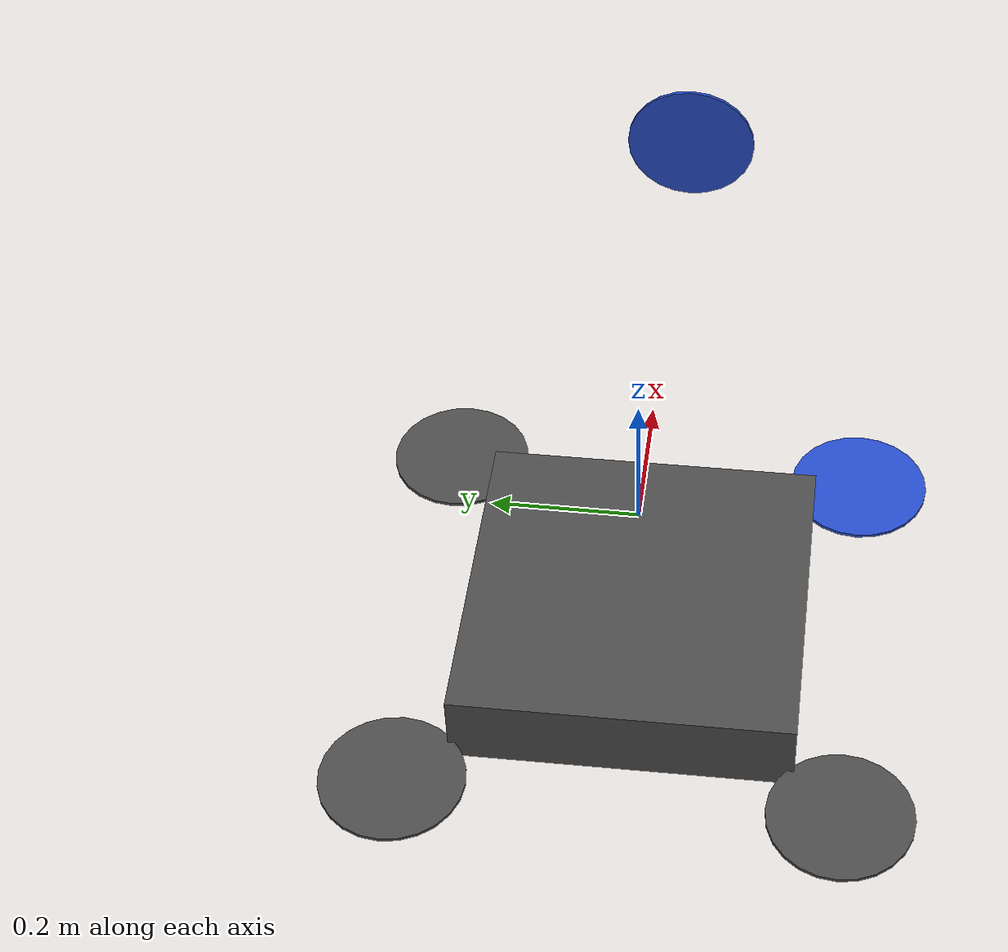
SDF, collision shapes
<sdf version='1.5'>
  <model name='standard_vtol'>
    <link name='base_link'>
      <pose>0 0 0 0 0 0</pose>
      <inertial>
        <pose>0 0 0 0 0 0</pose>
        <mass>1.5</mass>
        <inertia>
          <ixx>0.197563</ixx>
          <ixy>0</ixy>
          <ixz>0</ixz>
          <iyy>0.1458929</iyy>
          <iyz>0</iyz>
          <izz>0.1477</izz>
        </inertia>
      </inertial>
      <collision name='base_link_collision'>
        <pose>0 0 -0.2 0 0 0</pose>
        <geometry>
          <box>
            <size>0.47 0.47 0.11</size>
          </box>
        </geometry>
        <surface>
          <contact>
            <ode/>
          </contact>
          <friction>
            <ode/>
          </friction>
        </surface>
      </collision>
      <visual name='base_link_visual'>
        <pose>0.07 0 -0.08 0 0 0</pose>
        <geometry>
          <mesh>
            <scale>0.1 0.1 0.1</scale>
            <uri>model://standard_vtol/meshes/body.dae</uri>
          </mesh>
        </geometry>
        <material>
          <script>
            <name>Gazebo/DarkGrey</name>
            <uri>__default__</uri>
          </script>
        </material>
      </visual>
      <gravity>1</gravity>
      <velocity_decay/>
      <self_collide>0</self_collide>
    </link>
    <link name='standard_vtol/imu_link'>
      <pose>0 0 0 0 0 0</pose>
      <inertial>
        <pose>0 0 0 0 0 0</pose>
        <mass>0.015</mass>
        <inertia>
          <ixx>1e-05</ixx>
          <ixy>0</ixy>
          <ixz>0</ixz>
          <iyy>1e-05</iyy>
          <iyz>0</iyz>
          <izz>1e-05</izz>
        </inertia>
      </inertial>
    </link>
    <joint name='standard_vtol/imu_joint' type='revolute'>
      <child>standard_vtol/imu_link</child>
      <parent>base_link</parent>
      <axis>
        <xyz>1 0 0</xyz>
        <limit>
          <lower>0</lower>
          <upper>0</upper>
          <effort>0</effort>
          <velocity>0</velocity>
        </limit>
        <dynamics>
          <spring_reference>0</spring_reference>
          <spring_stiffness>0</spring_stiffness>
        </dynamics>
        <use_parent_model_frame>1</use_parent_model_frame>
      </axis>
    </joint>
    <link name='rotor_0'>
      <pose>0.3 -0.3 0.07 0 0 0</pose>
      <inertial>
        <pose>0 0 0 0 -0 0</pose>
        <mass>0.005</mass>
        <inertia>
          <ixx>9.75e-07</ixx>
          <ixy>0</ixy>
          <ixz>0</ixz>
          <iyy>0.000166704</iyy>
          <iyz>0</iyz>
          <izz>0.000167604</izz>
        </inertia>
      </inertial>
      <collision name='rotor_0_collision'>
        <pose>0 0 -0.3 0 0 0</pose>
        <geometry>
          <cylinder>
            <length>0.005</length>
            <radius>0.1</radius>
          </cylinder>
        </geometry>
        <surface>
          <contact>
            <ode/>
          </contact>
          <friction>
            <ode/>
          </friction>
        </surface>
      </collision>
      <visual name='rotor_0_visual'>
        <pose>0 0 0 0 -0 0</pose>
        <geometry>
          <mesh>
            <scale>1 1 1</scale>
            <uri>model://standard_vtol/meshes/iris_prop_ccw.dae</uri>
          </mesh>
        </geometry>
        <material>
          <script>
            <name>Gazebo/Blue</name>
            <uri>__default__</uri>
          </script>
        </material>
      </visual>
      <gravity>1</gravity>
      <velocity_decay/>
      <self_collide>0</self_collide>
    </link>
    <joint name='rotor_0_joint' type='revolute'>
      <child>rotor_0</child>
      <parent>base_link</parent>
      <axis>
        <xyz>0 0 1</xyz>
        <limit>
          <lower>-1e+16</lower>
          <upper>1e+16</upper>
        </limit>
        <dynamics>
          <spring_reference>0</spring_reference>
          <spring_stiffness>0</spring_stiffness>
        </dynamics>
        <use_parent_model_frame>1</use_parent_model_frame>
      </axis>
    </joint>
    <link name='rotor_1'>
      <pose>-0.3 0.3 0.07 0 0 0</pose>
      <inertial>
        <pose>0 0 0 0 -0 0</pose>
        <mass>0.005</mass>
        <inertia>
          <ixx>9.75e-07</ixx>
          <ixy>0</ixy>
          <ixz>0</ixz>
          <iyy>0.000166704</iyy>
          <iyz>0</iyz>
          <izz>0.000167604</izz>
        </inertia>
      </inertial>
      <collision name='rotor_1_collision'>
        <pose>0 0 -0.3 0 -0 0</pose>
        <geometry>
          <cylinder>
            <length>0.005</length>
            <radius>0.1</radius>
          </cylinder>
        </geometry>
        <surface>
          <contact>
            <ode/>
          </contact>
          <friction>
            <ode/>
          </friction>
        </surface>
      </collision>
      <visual name='rotor_1_visual'>
        <pose>0 0 0 0 -0 0</pose>
        <geometry>
          <mesh>
            <scale>1 1 1</scale>
            <uri>model://standard_vtol/meshes/iris_prop_ccw.dae</uri>
          </mesh>
        </geometry>
        <material>
          <script>
            <name>Gazebo/DarkGrey</name>
            <uri>__default__</uri>
          </script>
        </material>
      </visual>
      <gravity>1</gravity>
      <velocity_decay/>
      <self_collide>0</self_collide>
    </link>
    <joint name='rotor_1_joint' type='revolute'>
      <child>rotor_1</child>
      <parent>base_link</parent>
      <axis>
        <xyz>0 0 1</xyz>
        <limit>
          <lower>-1e+16</lower>
          <upper>1e+16</upper>
        </limit>
        <dynamics>
          <spring_reference>0</spring_reference>
          <spring_stiffness>0</spring_stiffness>
        </dynamics>
        <use_parent_model_frame>1</use_parent_model_frame>
      </axis>
    </joint>
    <link name='rotor_2'>
      <pose>0.3 0.3 0.07 0 0 0</pose>
      <inertial>
        <pose>0 0 0 0 -0 0</pose>
        <mass>0.005</mass>
        <inertia>
          <ixx>9.75e-07</ixx>
          <ixy>0</ixy>
          <ixz>0</ixz>
          <iyy>0.000166704</iyy>
          <iyz>0</iyz>
          <izz>0.000167604</izz>
        </inertia>
      </inertial>
      <collision name='rotor_2_collision'>
        <pose>0 0 -0.3 0 -0 0</pose>
        <geometry>
          <cylinder>
            <length>0.005</length>
            <radius>0.1</radius>
          </cylinder>
        </geometry>
        <surface>
          <contact>
            <ode/>
          </contact>
          <friction>
            <ode/>
          </friction>
        </surface>
      </collision>
      <visual name='rotor_2_visual'>
        <pose>0 0 0 0 -0 0</pose>
        <geometry>
          <mesh>
            <scale>1 1 1</scale>
            <uri>model://standard_vtol/meshes/iris_prop_ccw.dae</uri>
          </mesh>
        </geometry>
        <material>
          <script>
            <name>Gazebo/DarkGrey</name>
            <uri>__default__</uri>
          </script>
        </material>
      </visual>
      <gravity>1</gravity>
      <velocity_decay/>
      <self_collide>0</self_collide>
    </link>
    <joint name='rotor_2_joint' type='revolute'>
      <child>rotor_2</child>
      <parent>base_link</parent>
      <axis>
        <xyz>0 0 1</xyz>
        <limit>
          <lower>-1e+16</lower>
          <upper>1e+16</upper>
        </limit>
        <dynamics>
          <spring_reference>0</spring_reference>
          <spring_stiffness>0</spring_stiffness>
        </dynamics>
        <use_parent_model_frame>1</use_parent_model_frame>
      </axis>
    </joint>
    <link name='rotor_3'>
      <pose>-0.3 -0.3 0.07 0 0 0</pose>
      <inertial>
        <pose>0 0 0 0 -0 0</pose>
        <mass>0.005</mass>
        <inertia>
          <ixx>9.75e-07</ixx>
          <ixy>0</ixy>
          <ixz>0</ixz>
          <iyy>0.000166704</iyy>
          <iyz>0</iyz>
          <izz>0.000167604</izz>
        </inertia>
      </inertial>
      <collision name='rotor_3_collision'>
        <pose>0 0 -0.3 0 -0 0</pose>
        <geometry>
          <cylinder>
            <length>0.005</length>
            <radius>0.1</radius>
          </cylinder>
        </geometry>
        <surface>
          <contact>
            <ode/>
          </contact>
          <friction>
            <ode/>
          </friction>
        </surface>
      </collision>
      <visual name='rotor_3_visual'>
        <pose>0 0 0 0 -0 0</pose>
        <geometry>
          <mesh>
            <scale>1 1 1</scale>
            <uri>model://standard_vtol/meshes/iris_prop_ccw.dae</uri>
          </mesh>
        </geometry>
        <material>
          <script>
            <name>Gazebo/DarkGrey</name>
            <uri>__default__</uri>
          </script>
        </material>
      </visual>
      <gravity>1</gravity>
      <velocity_decay/>
      <self_collide>0</self_collide>
    </link>
    <joint name='rotor_3_joint' type='revolute'>
      <child>rotor_3</child>
      <parent>base_link</parent>
      <axis>
        <xyz>0 0 1</xyz>
        <limit>
          <lower>-1e+16</lower>
          <upper>1e+16</upper>
        </limit>
        <dynamics>
          <spring_reference>0</spring_reference>
          <spring_stiffness>0</spring_stiffness>
        </dynamics>
        <use_parent_model_frame>1</use_parent_model_frame>
      </axis>
    </joint>

    <link name='rotor_puller'>
      <pose>0.3 0 0.0 0 1.57 0</pose>
      <inertial>
        <pose>0 0 0 0 0 0</pose>
        <mass>0.005</mass>
        <inertia>
          <ixx>9.75e-07</ixx>
          <ixy>0</ixy>
          <ixz>0</ixz>
          <iyy>0.000166704</iyy>
          <iyz>0</iyz>
          <izz>0.000167604</izz>
        </inertia>
      </inertial>
      <collision name='rotor_puller_collision'>
        <pose>0.0 0 0.5 0 0 0</pose>
        <geometry>
          <cylinder>
            <length>0.005</length>
            <radius>0.1</radius>
          </cylinder>
        </geometry>
        <surface>
          <contact>
            <ode/>
          </contact>
          <friction>
            <ode/>
          </friction>
        </surface>
      </collision>
      <visual name='rotor_puller_visual'>
        <pose>0 0 -0.09 0 0 0</pose>
        <geometry>
          <mesh>
            <scale>1 1 1</scale>
            <uri>model://standard_vtol/meshes/iris_prop_ccw.dae</uri>
          </mesh>
        </geometry>
        <material>
          <script>
            <name>Gazebo/Blue</name>
            <uri>__default__</uri>
          </script>
        </material>
      </visual>
      <gravity>1</gravity>
      <velocity_decay/>
      <self_collide>0</self_collide>
    </link>
    <joint name='rotor_puller_joint' type='revolute'>
      <child>rotor_puller</child>
      <parent>base_link</parent>
      <axis>
        <xyz>1 0 0</xyz>
        <limit>
          <lower>-1e+16</lower>
          <upper>1e+16</upper>
        </limit>
        <dynamics>
          <spring_reference>0</spring_reference>
          <spring_stiffness>0</spring_stiffness>
        </dynamics>
        <use_parent_model_frame>1</use_parent_model_frame>
      </axis>
    </joint>

    <link name="left_elevon">
      <inertial>
        <mass>0.00000001</mass>
        <inertia>
          <ixx>0.000001</ixx>
          <ixy>0.0</ixy>
          <iyy>0.000001</iyy>
          <ixz>0.0</ixz>
          <iyz>0.0</iyz>
          <izz>0.000001</izz>
        </inertia>
        <pose>0 0.3 0 0.00 0 0.0</pose>
      </inertial>
    </link>
    <link name="right_elevon">
      <inertial>
        <mass>0.00000001</mass>
        <inertia>
          <ixx>0.000001</ixx>
          <ixy>0.0</ixy>
          <iyy>0.000001</iyy>
          <ixz>0.0</ixz>
          <iyz>0.0</iyz>
          <izz>0.000001</izz>
        </inertia>
        <pose>0 -0.3 0 0.00 0 0.0</pose>
      </inertial>
    </link>
    <link name="elevator">
      <inertial>
        <mass>0.00000001</mass>
        <inertia>
          <ixx>0.000001</ixx>
          <ixy>0.0</ixy>
          <iyy>0.000001</iyy>
          <ixz>0.0</ixz>
          <iyz>0.0</iyz>
          <izz>0.000001</izz>
        </inertia>
        <pose> -0.5 0 0 0.00 0 0.0</pose>
      </inertial>
    </link>
    <link name="rudder">
      <inertial>
        <mass>0.00000001</mass>
        <inertia>
          <ixx>0.000001</ixx>
          <ixy>0.0</ixy>
          <iyy>0.000001</iyy>
          <ixz>0.0</ixz>
          <iyz>0.0</iyz>
          <izz>0.000001</izz>
        </inertia>
        <pose>-0.5 0 0.05 0 0 0 </pose>
      </inertial>
    </link>
    <joint name='left_elevon_joint' type='revolute'>
      <parent>base_link</parent>
      <child>left_elevon</child>
      <pose>0 0.3 0 0.00 0 0.0</pose>
      <axis>
        <xyz>0 1 0</xyz>
        <limit>
          <!-- -30/+30 deg. -->
          <lower>-0.53</lower>
          <upper>0.53</upper>
        </limit>
        <dynamics>
          <damping>1.000</damping>
        </dynamics>
      </axis>
      <physics>
        <ode>
          <implicit_spring_damper>1</implicit_spring_damper>
        </ode>
      </physics>
    </joint>
    <joint name='right_elevon_joint' type='revolute'>
      <parent>base_link</parent>
      <child>right_elevon</child>
      <pose>0 -0.3 0 0.00 0 0.0</pose>
      <axis>
        <xyz>0 1 0</xyz>
        <limit>
          <!-- -30/+30 deg. -->
          <lower>-0.53</lower>
          <upper>0.53</upper>
        </limit>
        <dynamics>
          <damping>1.000</damping>
        </dynamics>
      </axis>
      <physics>
        <ode>
          <implicit_spring_damper>1</implicit_spring_damper>
        </ode>
      </physics>
    </joint>
    <joint name='elevator_joint' type='revolute'>
      <parent>base_link</parent>
      <child>elevator</child>
      <pose> -0.5 0 0 0 0 0</pose>
      <axis>
        <xyz>0 1 0</xyz>
        <limit>
          <!-- -30/+30 deg. -->
          <lower>-0.53</lower>
          <upper>0.53</upper>
        </limit>
        <dynamics>
          <damping>1.000</damping>
        </dynamics>
      </axis>
      <physics>
        <ode>
          <implicit_spring_damper>1</implicit_spring_damper>
        </ode>
      </physics>
    </joint>
    <joint name='rudder_joint' type='revolute'>
      <parent>base_link</parent>
      <child>rudder</child>
      <pose>-0.5 0 0.05 0.00 0 0.0</pose>
      <axis>
        <xyz>1 0 0</xyz>
        <limit>
          <!-- -30/+30 deg. -->
          <lower>-0.01</lower>
          <upper>0.01</upper>
        </limit>
        <dynamics>
          <damping>1.000</damping>
        </dynamics>
      </axis>
      <physics>
        <ode>
          <implicit_spring_damper>1</implicit_spring_damper>
        </ode>
      </physics>
    </joint>
    <plugin name="left_wing" filename="libLiftDragPlugin.so">
      <a0>0.05984281113</a0>
      <cla>4.752798721</cla>
      <cda>0.6417112299</cda>
      <cma>-1.8</cma>
      <alpha_stall>0.3391428111</alpha_stall>
      <cla_stall>-3.85</cla_stall>
      <cda_stall>-0.9233984055</cda_stall>
      <cma_stall>0</cma_stall>
      <cp>-0.05 0.3 0.05</cp>
      <area>0.12</area>
      <air_density>1.2041</air_density>
      <forward>1 0 0</forward>
      <upward>0 0 1</upward>
      <link_name>base_link</link_name>
      <control_joint_name>
        left_elevon_joint
      </control_joint_name>
      <control_joint_rad_to_cl>-0.5</control_joint_rad_to_cl>
    </plugin>
    <plugin name="right_wing" filename="libLiftDragPlugin.so">
      <a0>0.05984281113</a0>
      <cla>4.752798721</cla>
      <cda>0.6417112299</cda>
      <cma>-1.8</cma>
      <alpha_stall>0.3391428111</alpha_stall>
      <cla_stall>-3.85</cla_stall>
      <cda_stall>-0.9233984055</cda_stall>
      <cma_stall>0</cma_stall>
      <cp>-0.05 -0.3 0.05</cp>
      <area>0.12</area>
      <air_density>1.2041</air_density>
      <forward>1 0 0</forward>
      <upward>0 0 1</upward>
      <link_name>base_link</link_name>
      <control_joint_name>
        right_elevon_joint
      </control_joint_name>
      <control_joint_rad_to_cl>-0.5</control_joint_rad_to_cl>
    </plugin>
    <plugin name="elevator" filename="libLiftDragPlugin.so">
      <a0>-0.2</a0>
      <cla>4.752798721</cla>
      <cda>0.6417112299</cda>
      <cma>-1.8</cma>
      <alpha_stall>0.3391428111</alpha_stall>
      <cla_stall>-3.85</cla_stall>
      <cda_stall>-0.9233984055</cda_stall>
      <cma_stall>0</cma_stall>
      <cp>-0.5 0 0</cp>
      <area>0.01</area>
      <air_density>1.2041</air_density>
      <forward>1 0 0</forward>
      <upward>0 0 1</upward>
      <link_name>base_link</link_name>
      <control_joint_name>
        elevator_joint
      </control_joint_name>
      <control_joint_rad_to_cl>-4.0</control_joint_rad_to_cl>
    </plugin>
    <plugin name="rudder" filename="libLiftDragPlugin.so">
      <a0>0.0</a0>
      <cla>4.752798721</cla>
      <cda>0.6417112299</cda>
      <cma>-1.8</cma>
      <alpha_stall>0.3391428111</alpha_stall>
      <cla_stall>-3.85</cla_stall>
      <cda_stall>-0.9233984055</cda_stall>
      <cma_stall>0</cma_stall>
      <cp>-0.5 0 0.05</cp>
      <area>0.02</area>
      <air_density>1.2041</air_density>
      <forward>1 0 0</forward>
      <upward>0 1 0</upward>
      <link_name>base_link</link_name>
      <control_joint_name>
        rudder_joint
      </control_joint_name>
      <control_joint_rad_to_cl>-4.0</control_joint_rad_to_cl>
    </plugin>
    <plugin name='front_right_motor_model' filename='librotors_gazebo_motor_model.so'>
      <robotNamespace>standard_vtol</robotNamespace>
      <jointName>rotor_0_joint</jointName>
      <linkName>rotor_0</linkName>
      <turningDirection>ccw</turningDirection>
      <timeConstantUp>0.0125</timeConstantUp>
      <timeConstantDown>0.025</timeConstantDown>
      <maxRotVelocity>838</maxRotVelocity>
      <motorConstant>8.54858e-06</motorConstant>
      <momentConstant>0.016</momentConstant>
      <commandSubTopic>gazebo/command/motor_speed</commandSubTopic>
      <motorNumber>0</motorNumber>
      <rotorDragCoefficient>8.06428e-05</rotorDragCoefficient>
      <rollingMomentCoefficient>1e-06</rollingMomentCoefficient>
      <motorSpeedPubTopic>motor_speed/0</motorSpeedPubTopic>
      <rotorVelocitySlowdownSim>10</rotorVelocitySlowdownSim>
    </plugin>
    <plugin name='back_left_motor_model' filename='librotors_gazebo_motor_model.so'>
      <robotNamespace>standard_vtol</robotNamespace>
      <jointName>rotor_1_joint</jointName>
      <linkName>rotor_1</linkName>
      <turningDirection>ccw</turningDirection>
      <timeConstantUp>0.0125</timeConstantUp>
      <timeConstantDown>0.025</timeConstantDown>
      <maxRotVelocity>838</maxRotVelocity>
      <motorConstant>8.54858e-06</motorConstant>
      <momentConstant>0.016</momentConstant>
      <commandSubTopic>gazebo/command/motor_speed</commandSubTopic>
      <motorNumber>1</motorNumber>
      <rotorDragCoefficient>8.06428e-05</rotorDragCoefficient>
      <rollingMomentCoefficient>1e-06</rollingMomentCoefficient>
      <motorSpeedPubTopic>motor_speed/1</motorSpeedPubTopic>
      <rotorVelocitySlowdownSim>10</rotorVelocitySlowdownSim>
    </plugin>
    <plugin name='front_left_motor_model' filename='librotors_gazebo_motor_model.so'>
      <robotNamespace>standard_vtol</robotNamespace>
      <jointName>rotor_2_joint</jointName>
      <linkName>rotor_2</linkName>
      <turningDirection>cw</turningDirection>
      <timeConstantUp>0.0125</timeConstantUp>
      <timeConstantDown>0.025</timeConstantDown>
      <maxRotVelocity>838</maxRotVelocity>
      <motorConstant>8.54858e-06</motorConstant>
      <momentConstant>0.016</momentConstant>
      <commandSubTopic>gazebo/command/motor_speed</commandSubTopic>
      <motorNumber>2</motorNumber>
      <rotorDragCoefficient>8.06428e-05</rotorDragCoefficient>
      <rollingMomentCoefficient>1e-06</rollingMomentCoefficient>
      <motorSpeedPubTopic>motor_speed/2</motorSpeedPubTopic>
      <rotorVelocitySlowdownSim>10</rotorVelocitySlowdownSim>
    </plugin>
    <plugin name='back_right_motor_model' filename='librotors_gazebo_motor_model.so'>
      <robotNamespace>standard_vtol</robotNamespace>
      <jointName>rotor_3_joint</jointName>
      <linkName>rotor_3</linkName>
      <turningDirection>cw</turningDirection>
      <timeConstantUp>0.0125</timeConstantUp>
      <timeConstantDown>0.025</timeConstantDown>
      <maxRotVelocity>838</maxRotVelocity>
      <motorConstant>8.54858e-06</motorConstant>
      <momentConstant>0.016</momentConstant>
      <commandSubTopic>gazebo/command/motor_speed</commandSubTopic>
      <motorNumber>3</motorNumber>
      <rotorDragCoefficient>8.06428e-05</rotorDragCoefficient>
      <rollingMomentCoefficient>1e-06</rollingMomentCoefficient>
      <motorSpeedPubTopic>motor_speed/3</motorSpeedPubTopic>
      <rotorVelocitySlowdownSim>10</rotorVelocitySlowdownSim>
    </plugin>
    <plugin name='puller' filename='librotors_gazebo_motor_model.so'>
      <robotNamespace>standard_vtol</robotNamespace>
      <jointName>rotor_puller_joint</jointName>
      <linkName>rotor_puller</linkName>
      <turningDirection>cw</turningDirection>
      <timeConstantUp>0.0125</timeConstantUp>
      <timeConstantDown>0.025</timeConstantDown>
      <maxRotVelocity>1800</maxRotVelocity>
      <motorConstant>8.54858e-06</motorConstant>
      <momentConstant>0.016</momentConstant>
      <commandSubTopic>gazebo/command/motor_speed</commandSubTopic>
      <motorNumber>4</motorNumber>
      <rotorDragCoefficient>8.06428e-05</rotorDragCoefficient>
      <rollingMomentCoefficient>1e-06</rollingMomentCoefficient>
      <motorSpeedPubTopic>motor_speed/4</motorSpeedPubTopic>
      <rotorVelocitySlowdownSim>10</rotorVelocitySlowdownSim>
    </plugin>
    <plugin name='rotors_gazebo_imu_plugin' filename='librotors_gazebo_imu_plugin.so'>
      <robotNamespace>standard_vtol</robotNamespace>
      <linkName>standard_vtol/imu_link</linkName>
      <imuTopic>imu</imuTopic>
      <gyroscopeNoiseDensity>0.0003394</gyroscopeNoiseDensity>
      <gyroscopeRandomWalk>3.8785e-05</gyroscopeRandomWalk>
      <gyroscopeBiasCorrelationTime>1000.0</gyroscopeBiasCorrelationTime>
      <gyroscopeTurnOnBiasSigma>0.0087</gyroscopeTurnOnBiasSigma>
      <accelerometerNoiseDensity>0.004</accelerometerNoiseDensity>
      <accelerometerRandomWalk>0.006</accelerometerRandomWalk>
      <accelerometerBiasCorrelationTime>300.0</accelerometerBiasCorrelationTime>
      <accelerometerTurnOnBiasSigma>0.196</accelerometerTurnOnBiasSigma>
    </plugin>
    <plugin name='mavlink_interface' filename='librotors_gazebo_mavlink_interface.so'>
      <robotNamespace>standard_vtol</robotNamespace>
      <imuSubTopic>imu</imuSubTopic>
      <motorSpeedCommandPubTopic>gazebo/command/motor_speed</motorSpeedCommandPubTopic>
      <left_elevon_joint>
        left_elevon_joint
      </left_elevon_joint>
      <right_elevon_joint>
        right_elevon_joint
      </right_elevon_joint>
      <elevator_joint>
        elevator_joint
      </elevator_joint>
      <rudder_joint>
        rudder_joint
      </rudder_joint>
    </plugin>
    <static>0</static>
  </model>
</sdf>
